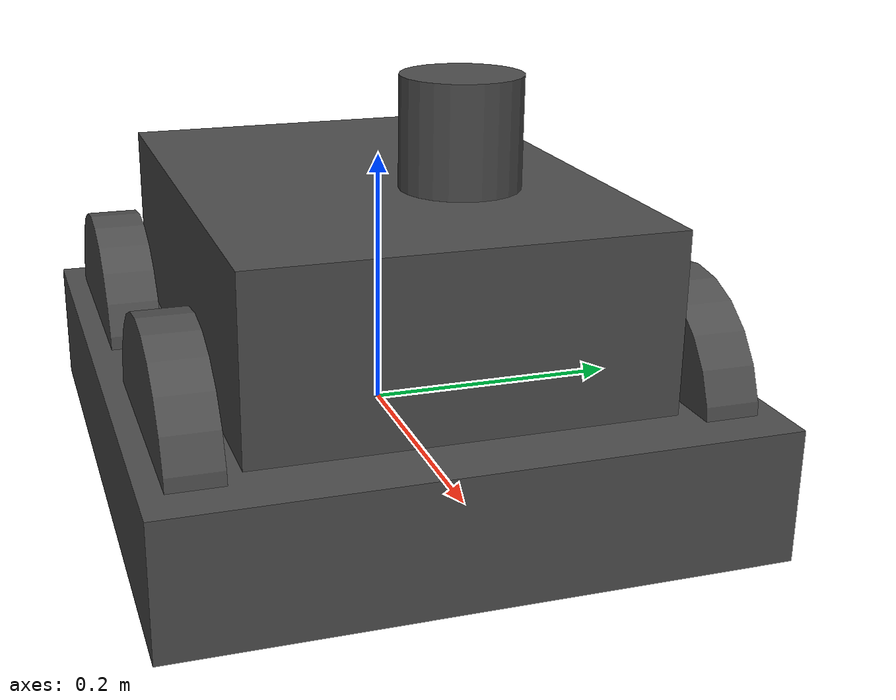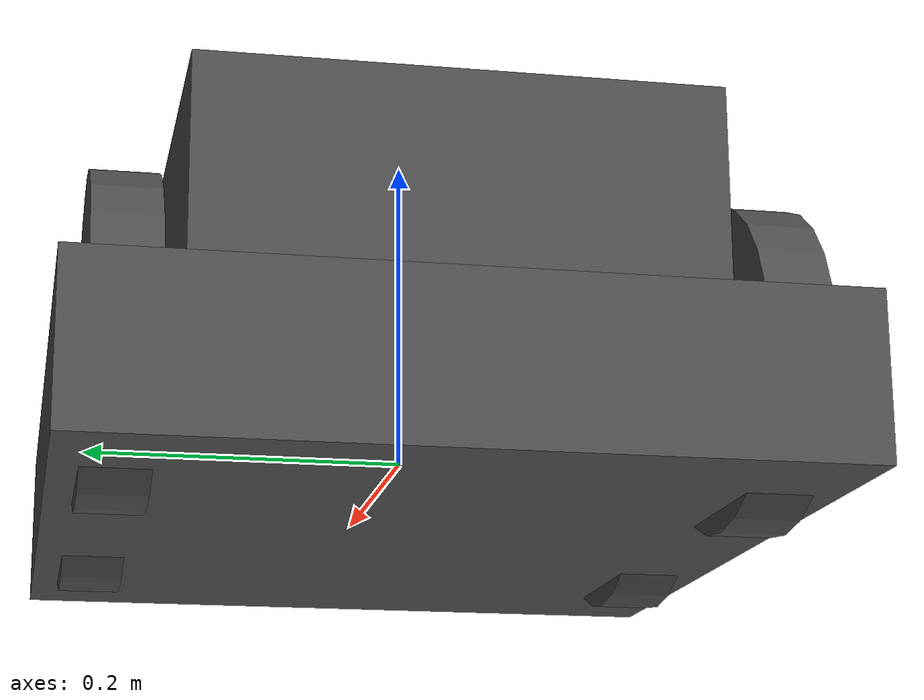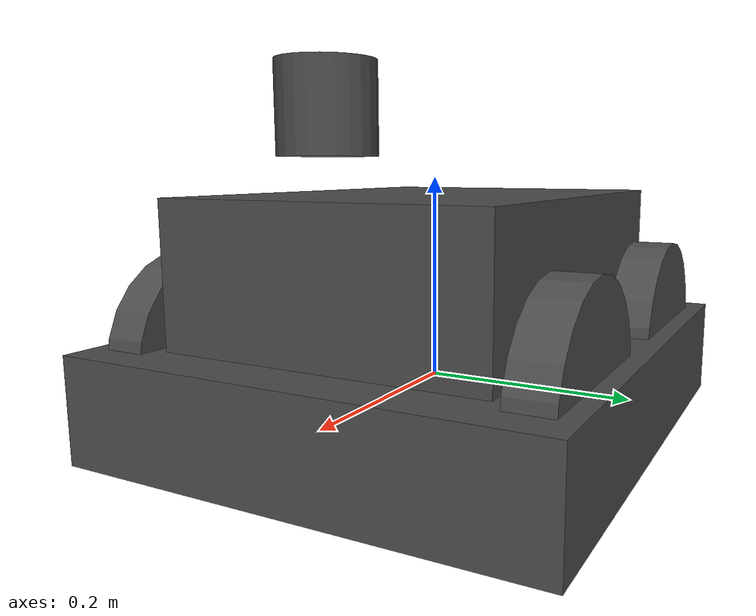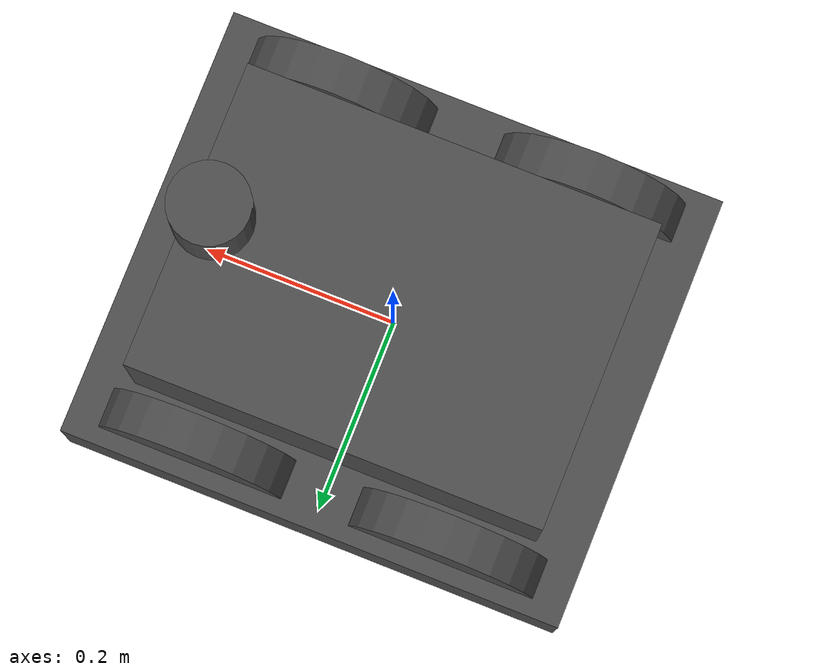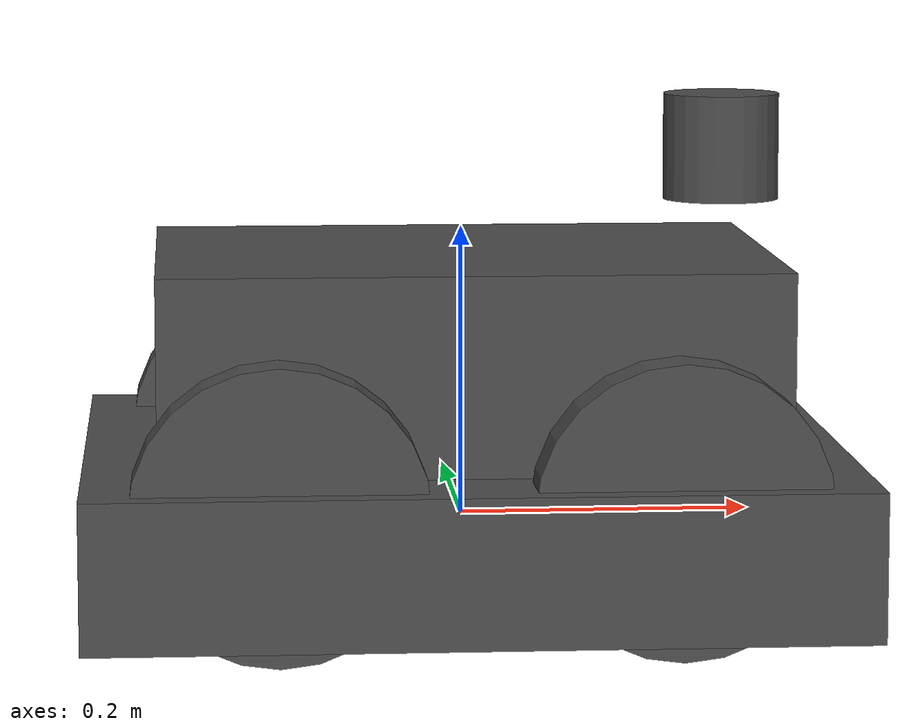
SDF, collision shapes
<sdf version='1.7'>
  <model name='jackal'>
    <link name='base_link'>
      <inertial>
        <pose>0.015289 0.001961 0.070667 0 -0 0</pose>
        <mass>16.854</mass>
        <inertia>
          <ixx>0.325223</ixx>
          <ixy>-0.000691321</ixy>
          <ixz>0.00620745</ixz>
          <iyy>0.412953</iyy>
          <iyz>-0.000778813</iyz>
          <izz>0.457898</izz>
        </inertia>
      </inertial>
      <collision name='base_link_fixed_joint_lump__chassis_link_collision'>
        <pose>0 0 0.092 0 -0 0</pose>
        <geometry>
          <box>
            <size>0.42 0.31 0.184</size>
          </box>
        </geometry>
        <surface>
          <contact>
            <ode/>
          </contact>
          <friction>
            <ode/>
          </friction>
        </surface>
      </collision>
      <collision name='base_link_fixed_joint_lump__os1_sensor_collision_1'>
        <pose>0.18 0 0.2545 0 -0 0</pose>
        <geometry>
          <cylinder>
            <length>0.073</length>
            <radius>0.04</radius>
          </cylinder>
        </geometry>
        <surface>
          <contact>
            <ode/>
          </contact>
          <friction>
            <ode/>
          </friction>
        </surface>
      </collision>
      <collision name='base_link_fixed_joint_lump__sim_collider_collision_2'>
        <pose>0 0 0 0 -0 0</pose>
        <geometry>
          <box>
            <size>0.52 0.45 0.1</size>
          </box>
        </geometry>
        <surface>
          <contact>
            <ode/>
          </contact>
          <friction>
            <ode/>
          </friction>
        </surface>
      </collision>
      <visual name='base_link_fixed_joint_lump__chassis_link_visual'>
        <pose>0 0 -0.0655 1.5708 -0 1.5708</pose>
        <geometry>
          <mesh>
            <scale>1 1 1</scale>
            <uri>model://jackal_description/meshes/jackal-base.stl</uri>
          </mesh>
        </geometry>
        <material>
          <script>
            <name>Gazebo/DarkGrey</name>
            <uri>file://media/materials/scripts/gazebo.material</uri>
          </script>
        </material>
      </visual>
      <visual name='base_link_fixed_joint_lump__front_fender_link_visual_1'>
        <pose>0 0 0 0 -0 0</pose>
        <geometry>
          <mesh>
            <scale>1 1 1</scale>
            <uri>model://jackal_description/meshes/jackal-fender.stl</uri>
          </mesh>
        </geometry>
        <material>
          <script>
            <name>Gazebo/Yellow</name>
            <uri>file://media/materials/scripts/gazebo.material</uri>
          </script>
        </material>
      </visual>
      <visual name='base_link_fixed_joint_lump__navsat_link_visual_2'>
        <pose>-0.18 0.126 0.1895 0 -0 0</pose>
        <geometry>
          <cylinder>
            <length>0.016</length>
            <radius>0.026</radius>
          </cylinder>
        </geometry>
        <material>
          <script>
            <name>Gazebo/DarkGrey</name>
            <uri>file://media/materials/scripts/gazebo.material</uri>
          </script>
        </material>
      </visual>
      <visual name='base_link_fixed_joint_lump__rear_fender_link_visual_3'>
        <pose>0 0 0 0 -0 3.14159</pose>
        <geometry>
          <mesh>
            <scale>1 1 1</scale>
            <uri>model://jackal_description/meshes/jackal-fender.stl</uri>
          </mesh>
        </geometry>
        <material>
          <script>
            <name>Gazebo/Yellow</name>
            <uri>file://media/materials/scripts/gazebo.material</uri>
          </script>
        </material>
      </visual>
      <visual name='base_link_fixed_joint_lump__os1_sensor_visual_4'>
        <pose>0.18 0 0.218 0 -0 1.5707</pose>
        <geometry>
          <mesh>
            <scale>1 1 1</scale>
            <uri>model://ouster_description/meshes/os1_64.dae</uri>
          </mesh>
        </geometry>
      </visual>
      <gravity>1</gravity>
      <sensor name='os1_sensor-OS1-64' type='ray'>
        <visualize>0</visualize>
        <update_rate>10</update_rate>
        <ray>
          <scan>
            <horizontal>
              <samples>220</samples>
              <resolution>1</resolution>
              <min_angle>-3.14159</min_angle>
              <max_angle>3.14159</max_angle>
            </horizontal>
            <vertical>
              <samples>64</samples>
              <resolution>1</resolution>
              <min_angle>-0.26</min_angle>
              <max_angle>0.26</max_angle>
            </vertical>
          </scan>
          <range>
            <min>0.9</min>
            <max>75</max>
            <resolution>0.03</resolution>
          </range>
        </ray>
        <plugin name='gazebo_ros_laser_controller' filename='libgazebo_ros_ouster_laser.so'>
          <topicName>/points</topicName>
          <frameName>os1_sensor</frameName>
          <min_range>0.90</min_range>
          <max_range>75.0</max_range>
          <gaussianNoise>0.008</gaussianNoise>
        </plugin>
        <pose>0.18 0 0.218 0 -0 0</pose>
      </sensor>
      <sensor name='sim_collider_link_contact_sensor' type='contact'>
        <always_on>1</always_on>
        <update_rate>100</update_rate>
        <contact>
          <collision>base_link_fixed_joint_lump__sim_collider_collision_1</collision>
          <topic>__default_topic__</topic>
        </contact>
        <plugin name='gazebo_ros_sim_collider_controller' filename='libgazebo_ros_bumper.so'>
          <always_on>1</always_on>
          <update_rate>100</update_rate>
          <frameName>world</frameName>
          <bumperTopicName>bumper_contact_state</bumperTopicName>
        </plugin>
        <pose>0 0 0 0 -0 0</pose>
      </sensor>
    </link>
    <joint name='front_left_wheel' type='revolute'>
      <pose relative_to='base_link'>0.131 0.187795 0.0345 0 -0 0</pose>
      <parent>base_link</parent>
      <child>front_left_wheel_link</child>
      <axis>
        <xyz>0 1 0</xyz>
        <limit>
          <lower>-1e+16</lower>
          <upper>1e+16</upper>
        </limit>
        <dynamics>
          <spring_reference>0</spring_reference>
          <spring_stiffness>0</spring_stiffness>
        </dynamics>
      </axis>
    </joint>
    <link name='front_left_wheel_link'>
      <pose relative_to='front_left_wheel'>0 0 0 0 -0 0</pose>
      <inertial>
        <pose>0 0 0 0 -0 0</pose>
        <mass>0.477</mass>
        <inertia>
          <ixx>0.0013</ixx>
          <ixy>0</ixy>
          <ixz>0</ixz>
          <iyy>0.0024</iyy>
          <iyz>0</iyz>
          <izz>0.0013</izz>
        </inertia>
      </inertial>
      <collision name='front_left_wheel_link_collision'>
        <pose>0 0 0 1.5708 -0 0</pose>
        <geometry>
          <cylinder>
            <length>0.04</length>
            <radius>0.098</radius>
          </cylinder>
        </geometry>
        <surface>
          <contact>
            <ode>
              <kp>1e+07</kp>
              <kd>1</kd>
            </ode>
          </contact>
          <friction>
            <ode>
              <mu>0.5</mu>
              <mu2>0.5</mu2>
              <fdir1>1 0 0</fdir1>
            </ode>
          </friction>
        </surface>
      </collision>
      <visual name='front_left_wheel_link_visual'>
        <pose>0 0 0 1.5708 -0 0</pose>
        <geometry>
          <mesh>
            <scale>1 1 1</scale>
            <uri>model://jackal_description/meshes/jackal-wheel.stl</uri>
          </mesh>
        </geometry>
        <material>
          <script>
            <name>Gazebo/DarkGrey</name>
            <uri>file://media/materials/scripts/gazebo.material</uri>
          </script>
        </material>
      </visual>
      <self_collide>0</self_collide>
    </link>
    <joint name='front_right_wheel' type='revolute'>
      <pose relative_to='base_link'>0.131 -0.187795 0.0345 0 -0 0</pose>
      <parent>base_link</parent>
      <child>front_right_wheel_link</child>
      <axis>
        <xyz>0 1 0</xyz>
        <limit>
          <lower>-1e+16</lower>
          <upper>1e+16</upper>
        </limit>
        <dynamics>
          <spring_reference>0</spring_reference>
          <spring_stiffness>0</spring_stiffness>
        </dynamics>
      </axis>
    </joint>
    <link name='front_right_wheel_link'>
      <pose relative_to='front_right_wheel'>0 0 0 0 -0 0</pose>
      <inertial>
        <pose>0 0 0 0 -0 0</pose>
        <mass>0.477</mass>
        <inertia>
          <ixx>0.0013</ixx>
          <ixy>0</ixy>
          <ixz>0</ixz>
          <iyy>0.0024</iyy>
          <iyz>0</iyz>
          <izz>0.0013</izz>
        </inertia>
      </inertial>
      <collision name='front_right_wheel_link_collision'>
        <pose>0 0 0 1.5708 -0 0</pose>
        <geometry>
          <cylinder>
            <length>0.04</length>
            <radius>0.098</radius>
          </cylinder>
        </geometry>
        <surface>
          <contact>
            <ode>
              <kp>1e+07</kp>
              <kd>1</kd>
            </ode>
          </contact>
          <friction>
            <ode>
              <mu>0.5</mu>
              <mu2>0.5</mu2>
              <fdir1>1 0 0</fdir1>
            </ode>
          </friction>
        </surface>
      </collision>
      <visual name='front_right_wheel_link_visual'>
        <pose>0 0 0 1.5708 -0 0</pose>
        <geometry>
          <mesh>
            <scale>1 1 1</scale>
            <uri>model://jackal_description/meshes/jackal-wheel.stl</uri>
          </mesh>
        </geometry>
        <material>
          <script>
            <name>Gazebo/DarkGrey</name>
            <uri>file://media/materials/scripts/gazebo.material</uri>
          </script>
        </material>
      </visual>
      <self_collide>0</self_collide>
    </link>
    <joint name='rear_left_wheel' type='revolute'>
      <pose relative_to='base_link'>-0.131 0.187795 0.0345 0 -0 0</pose>
      <parent>base_link</parent>
      <child>rear_left_wheel_link</child>
      <axis>
        <xyz>0 1 0</xyz>
        <limit>
          <lower>-1e+16</lower>
          <upper>1e+16</upper>
        </limit>
        <dynamics>
          <spring_reference>0</spring_reference>
          <spring_stiffness>0</spring_stiffness>
        </dynamics>
      </axis>
    </joint>
    <link name='rear_left_wheel_link'>
      <pose relative_to='rear_left_wheel'>0 0 0 0 -0 0</pose>
      <inertial>
        <pose>0 0 0 0 -0 0</pose>
        <mass>0.477</mass>
        <inertia>
          <ixx>0.0013</ixx>
          <ixy>0</ixy>
          <ixz>0</ixz>
          <iyy>0.0024</iyy>
          <iyz>0</iyz>
          <izz>0.0013</izz>
        </inertia>
      </inertial>
      <collision name='rear_left_wheel_link_collision'>
        <pose>0 0 0 1.5708 -0 0</pose>
        <geometry>
          <cylinder>
            <length>0.04</length>
            <radius>0.098</radius>
          </cylinder>
        </geometry>
        <surface>
          <contact>
            <ode>
              <kp>1e+07</kp>
              <kd>1</kd>
            </ode>
          </contact>
          <friction>
            <ode>
              <mu>0.5</mu>
              <mu2>0.5</mu2>
              <fdir1>1 0 0</fdir1>
            </ode>
          </friction>
        </surface>
      </collision>
      <visual name='rear_left_wheel_link_visual'>
        <pose>0 0 0 1.5708 -0 0</pose>
        <geometry>
          <mesh>
            <scale>1 1 1</scale>
            <uri>model://jackal_description/meshes/jackal-wheel.stl</uri>
          </mesh>
        </geometry>
        <material>
          <script>
            <name>Gazebo/DarkGrey</name>
            <uri>file://media/materials/scripts/gazebo.material</uri>
          </script>
        </material>
      </visual>
      <self_collide>0</self_collide>
    </link>
    <joint name='rear_right_wheel' type='revolute'>
      <pose relative_to='base_link'>-0.131 -0.187795 0.0345 0 -0 0</pose>
      <parent>base_link</parent>
      <child>rear_right_wheel_link</child>
      <axis>
        <xyz>0 1 0</xyz>
        <limit>
          <lower>-1e+16</lower>
          <upper>1e+16</upper>
        </limit>
        <dynamics>
          <spring_reference>0</spring_reference>
          <spring_stiffness>0</spring_stiffness>
        </dynamics>
      </axis>
    </joint>
    <link name='rear_right_wheel_link'>
      <pose relative_to='rear_right_wheel'>0 0 0 0 -0 0</pose>
      <inertial>
        <pose>0 0 0 0 -0 0</pose>
        <mass>0.477</mass>
        <inertia>
          <ixx>0.0013</ixx>
          <ixy>0</ixy>
          <ixz>0</ixz>
          <iyy>0.0024</iyy>
          <iyz>0</iyz>
          <izz>0.0013</izz>
        </inertia>
      </inertial>
      <collision name='rear_right_wheel_link_collision'>
        <pose>0 0 0 1.5708 -0 0</pose>
        <geometry>
          <cylinder>
            <length>0.04</length>
            <radius>0.098</radius>
          </cylinder>
        </geometry>
        <surface>
          <contact>
            <ode>
              <kp>1e+07</kp>
              <kd>1</kd>
            </ode>
          </contact>
          <friction>
            <ode>
              <mu>0.5</mu>
              <mu2>0.5</mu2>
              <fdir1>1 0 0</fdir1>
            </ode>
          </friction>
        </surface>
      </collision>
      <visual name='rear_right_wheel_link_visual'>
        <pose>0 0 0 1.5708 -0 0</pose>
        <geometry>
          <mesh>
            <scale>1 1 1</scale>
            <uri>model://jackal_description/meshes/jackal-wheel.stl</uri>
          </mesh>
        </geometry>
        <material>
          <script>
            <name>Gazebo/DarkGrey</name>
            <uri>file://media/materials/scripts/gazebo.material</uri>
          </script>
        </material>
      </visual>
      <self_collide>0</self_collide>
    </link>
    <plugin name='gazebo_ros_control' filename='libgazebo_ros_control.so'>
      <robotNamespace>/</robotNamespace>
    </plugin>
    <plugin name='imu_controller' filename='libhector_gazebo_ros_imu.so'>
      <robotNamespace>/</robotNamespace>
      <updateRate>50.0</updateRate>
      <topicName>imu/data</topicName>
      <accelDrift>0.005 0.005 0.005</accelDrift>
      <accelGaussianNoise>0.005 0.005 0.005</accelGaussianNoise>
      <rateDrift>0.005 0.005 0.005</rateDrift>
      <rateGaussianNoise>0.005 0.005 0.005</rateGaussianNoise>
      <headingDrift>0.005</headingDrift>
      <headingGaussianNoise>0.005</headingGaussianNoise>
      <bodyName>base_link</bodyName>
      <xyzOffset>0 0 0</xyzOffset>
      <rpyOffset>0 -0 0</rpyOffset>
    </plugin>
    <static>0</static>
    <plugin name='gps_controller' filename='libhector_gazebo_ros_gps.so'>
      <updateRate>40</updateRate>
      <robotNamespace>/</robotNamespace>
      <frameId>base_link</frameId>
      <topicName>/navsat/fix</topicName>
      <velocityTopicName>/navsat/vel</velocityTopicName>
      <referenceLatitude>49.9</referenceLatitude>
      <referenceLongitude>8.9</referenceLongitude>
      <referenceHeading>0</referenceHeading>
      <referenceAltitude>0</referenceAltitude>
      <drift>0.0001 0.0001 0.0001</drift>
      <bodyName>base_link</bodyName>
      <xyzOffset>0.18 -0.126 -0.1815</xyzOffset>
      <rpyOffset>0 -0 0</rpyOffset>
    </plugin>
  </model>
</sdf>
